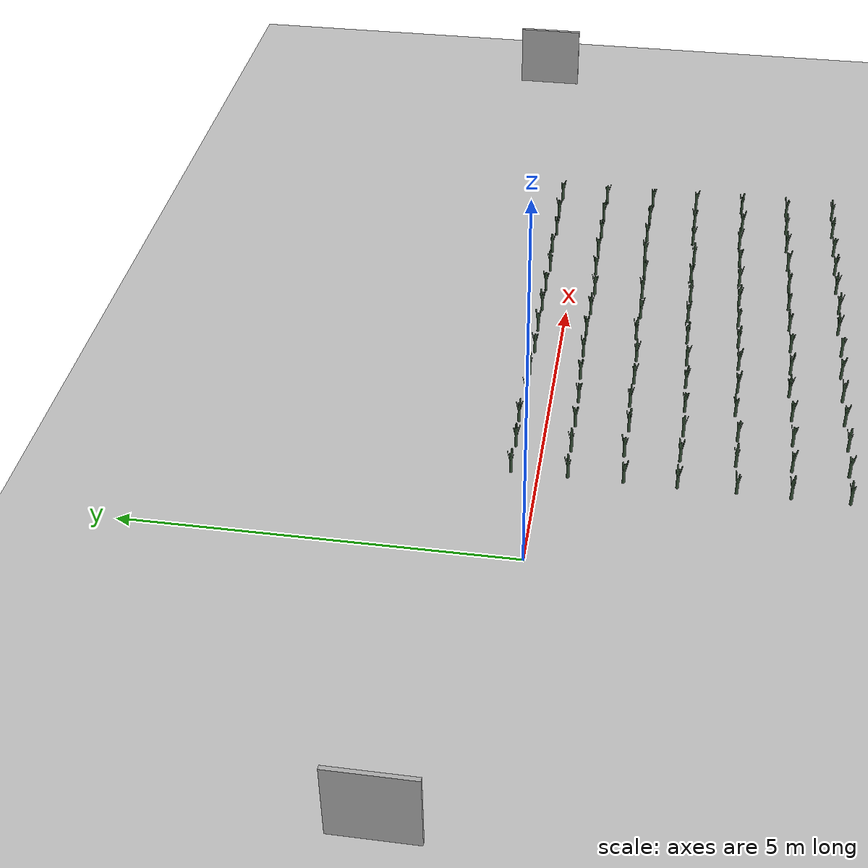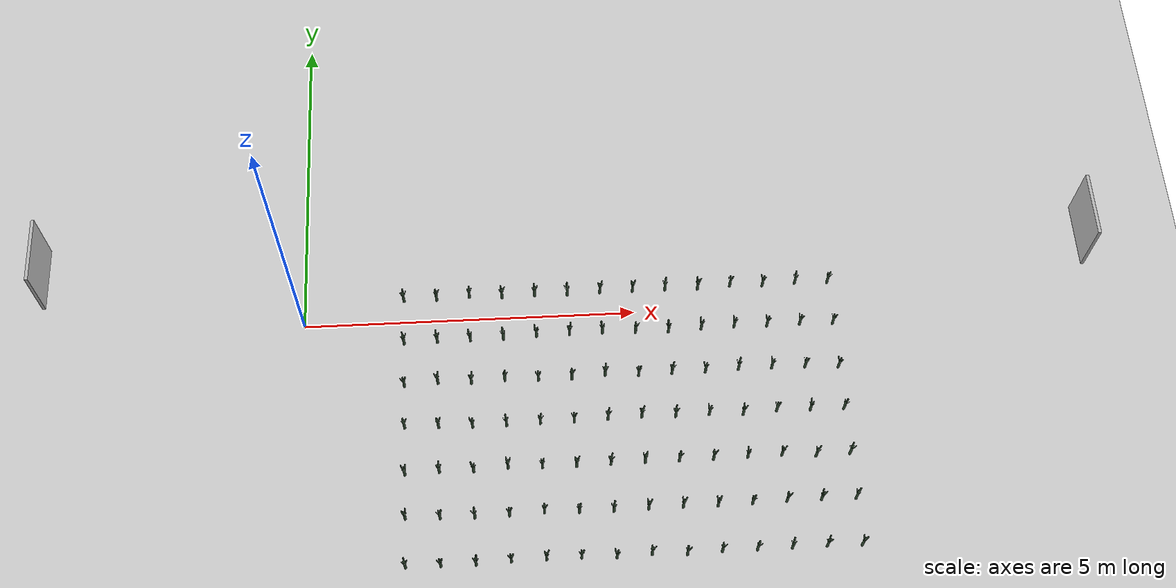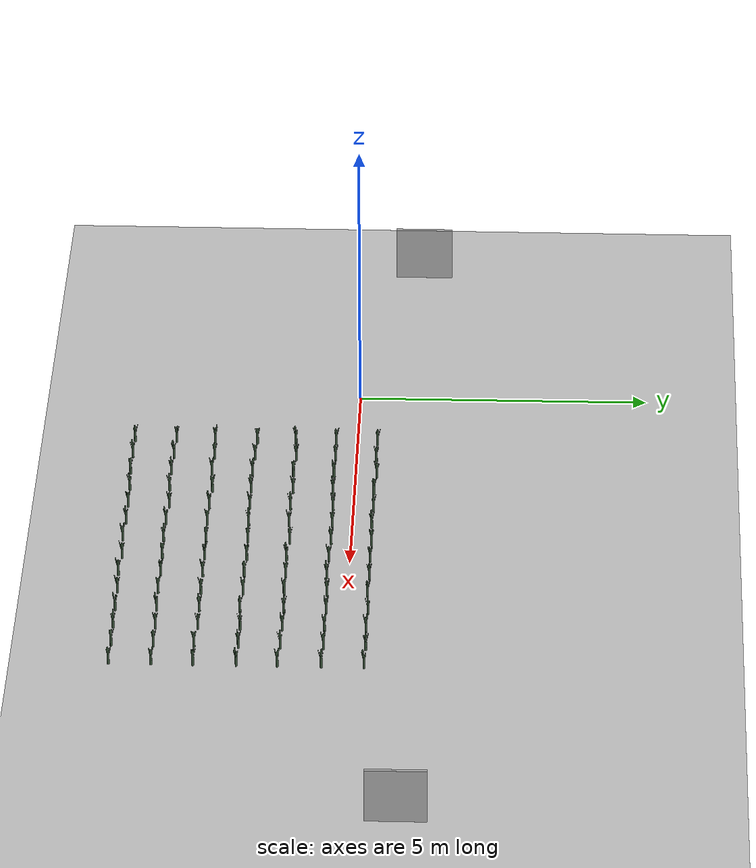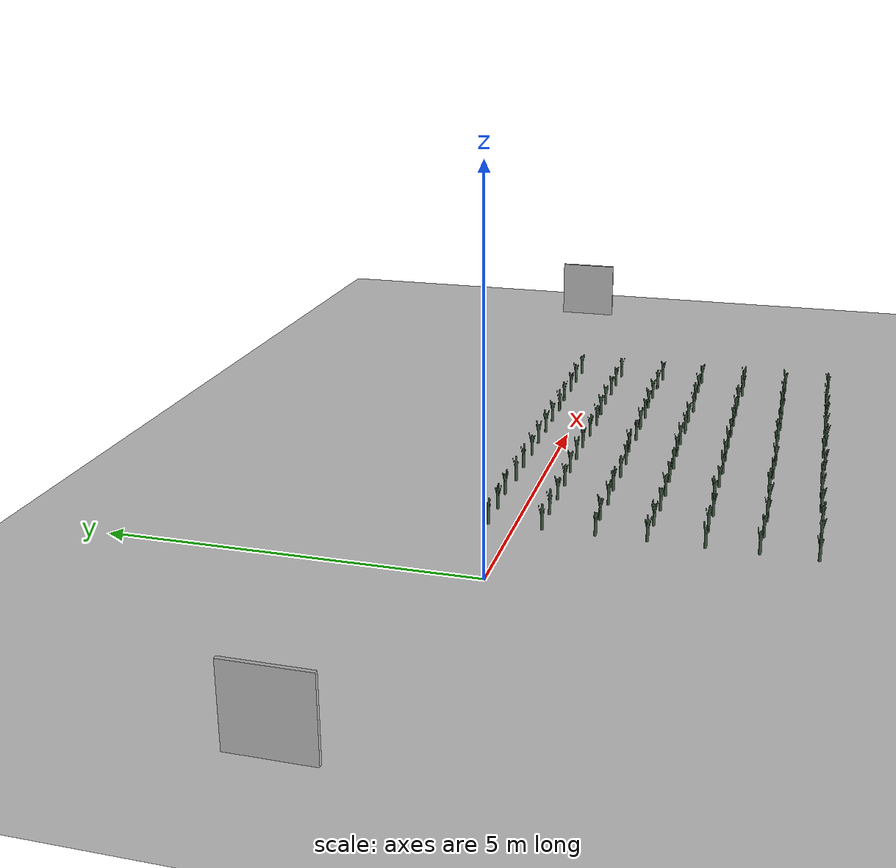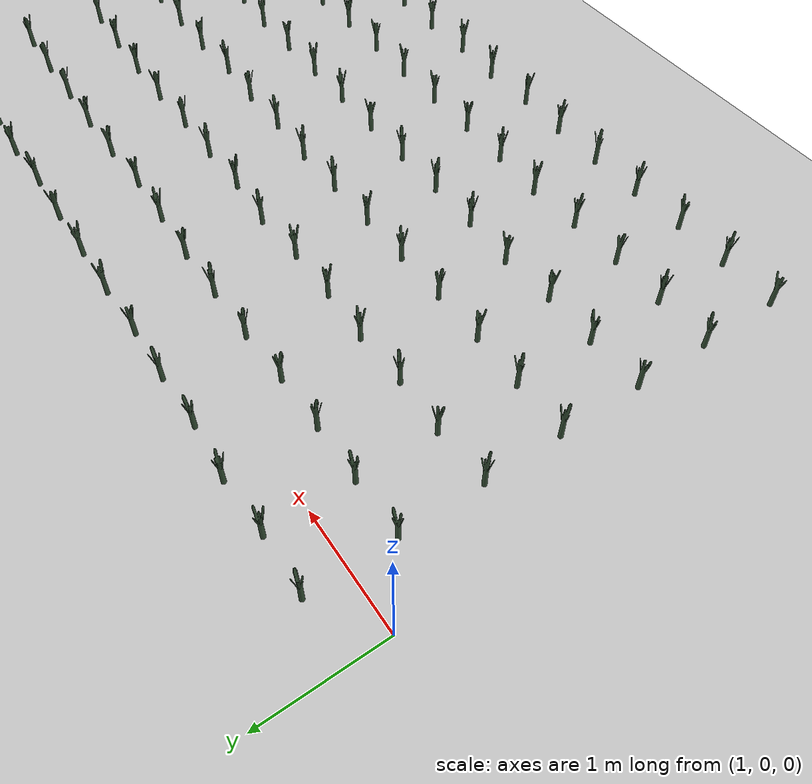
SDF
<sdf version="1.6">
 <world name="default">
  <light name="sun" type="directional">
   <pose>0 0 10 0 -0 0</pose>
   <diffuse>0.5 0.5 0.5 1</diffuse>
   <specular>0.1 0.1 0.1 1</specular>
   <attenuation>
    <range>1000</range>
    <constant>0.9</constant>
    <linear>0.01</linear>
    <quadratic>0.001</quadratic>
   </attenuation>
   <direction>0.9 0.5 -1</direction>
  </light>
  <scene><background>130 200 255 1</background><ambient>130 140 140 1</ambient></scene>
  <include><uri>model://Sign</uri><pose>12 1 0 0 0 0</pose><static>1</static></include>
  <include><uri>model://Sign</uri><pose>-4 1 0 0 0 0</pose><static>1</static></include>
  <include><uri>model://dirt_plane</uri></include>
  <include><uri>model://Leek</uri><pose>1.500000 0.347199 0.15 0 0 -25.205509</pose><static>0</static></include>
  <include><uri>model://Leek</uri><pose>2.000000 0.343553 0.15 0 0 -58.023160</pose><static>0</static></include>
  <include><uri>model://Leek</uri><pose>2.500000 0.368644 0.15 0 0 167.792155</pose><static>0</static></include>
  <include>
   <uri>model://Leek</uri>
   <pose>3.000000 0.334669 0.15 0 0 -137.977157</pose>
   <static>0</static>
  </include>
  <include><uri>model://Leek</uri><pose>3.500000 0.345116 0.15 0 0 -43.953948</pose><static>0</static></include>
  <include>
   <uri>model://Leek</uri>
   <pose>4.000000 0.335526 0.15 0 0 -130.264223</pose>
   <static>0</static>
  </include>
  <include><uri>model://Leek</uri><pose>4.500000 0.349215 0.15 0 0 -7.061172</pose><static>0</static></include>
  <include><uri>model://Leek</uri><pose>5.000000 0.345693 0.15 0 0 -38.766913</pose><static>0</static></include>
  <include><uri>model://Leek</uri><pose>5.500000 0.348066 0.15 0 0 -17.410048</pose><static>0</static></include>
  <include>
   <uri>model://Leek</uri>
   <pose>6.000000 0.337460 0.15 0 0 -112.861694</pose>
   <static>0</static>
  </include>
  <include><uri>model://Leek</uri><pose>6.500000 0.365721 0.15 0 0 141.488709</pose><static>0</static></include>
  <include><uri>model://Leek</uri><pose>7.000000 0.347504 0.15 0 0 -22.463216</pose><static>0</static></include>
  <include><uri>model://Leek</uri><pose>7.500000 0.362042 0.15 0 0 108.379906</pose><static>0</static></include>
  <include><uri>model://Leek</uri><pose>8.000000 0.354607 0.15 0 0 41.465158</pose><static>0</static></include>
  <include>
   <uri>model://Leek</uri>
   <pose>1.500000 -0.369525 0.15 0 0 -175.724592</pose>
   <static>0</static>
  </include>
  <include>
   <uri>model://Leek</uri>
   <pose>2.000000 -0.363948 0.15 0 0 -125.534963</pose>
   <static>0</static>
  </include>
  <include>
   <uri>model://Leek</uri>
   <pose>2.500000 -0.367910 0.15 0 0 -161.191735</pose>
   <static>0</static>
  </include>
  <include>
   <uri>model://Leek</uri>
   <pose>3.000000 -0.363754 0.15 0 0 -123.788120</pose>
   <static>0</static>
  </include>
  <include><uri>model://Leek</uri><pose>3.500000 -0.341367 0.15 0 0 77.695830</pose><static>0</static></include>
  <include>
   <uri>model://Leek</uri>
   <pose>4.000000 -0.336092 0.15 0 0 125.169761</pose>
   <static>0</static>
  </include>
  <include>
   <uri>model://Leek</uri>
   <pose>4.500000 -0.333710 0.15 0 0 146.611966</pose>
   <static>0</static>
  </include>
  <include><uri>model://Leek</uri><pose>5.000000 -0.350886 0.15 0 0 -7.971895</pose><static>0</static></include>
  <include>
   <uri>model://Leek</uri>
   <pose>5.500000 -0.365855 0.15 0 0 -142.694072</pose>
   <static>0</static>
  </include>
  <include>
   <uri>model://Leek</uri>
   <pose>6.000000 -0.338588 0.15 0 0 102.705771</pose>
   <static>0</static>
  </include>
  <include>
   <uri>model://Leek</uri>
   <pose>6.500000 -0.331592 0.15 0 0 165.674098</pose>
   <static>0</static>
  </include>
  <include>
   <uri>model://Leek</uri>
   <pose>7.000000 -0.337840 0.15 0 0 109.443593</pose>
   <static>0</static>
  </include>
  <include>
   <uri>model://Leek</uri>
   <pose>7.500000 -0.335042 0.15 0 0 134.625890</pose>
   <static>0</static>
  </include>
  <include><uri>model://Leek</uri><pose>8.000000 -0.348966 0.15 0 0 9.302887</pose><static>0</static></include>
  <include>
   <uri>model://Leek</uri>
   <pose>1.500000 -1.067755 0.15 0 0 -159.795682</pose>
   <static>0</static>
  </include>
  <include><uri>model://Leek</uri><pose>2.000000 -1.040790 0.15 0 0 82.888602</pose><static>0</static></include>
  <include>
   <uri>model://Leek</uri>
   <pose>2.500000 -1.065399 0.15 0 0 -138.591456</pose>
   <static>0</static>
  </include>
  <include><uri>model://Leek</uri><pose>3.000000 -1.045315 0.15 0 0 42.167323</pose><static>0</static></include>
  <include>
   <uri>model://Leek</uri>
   <pose>3.500000 -1.067092 0.15 0 0 -153.828431</pose>
   <static>0</static>
  </include>
  <include>
   <uri>model://Leek</uri>
   <pose>4.000000 -1.067628 0.15 0 0 -158.649551</pose>
   <static>0</static>
  </include>
  <include>
   <uri>model://Leek</uri>
   <pose>4.500000 -1.032575 0.15 0 0 156.826075</pose>
   <static>0</static>
  </include>
  <include>
   <uri>model://Leek</uri>
   <pose>5.000000 -1.061472 0.15 0 0 -103.249277</pose>
   <static>0</static>
  </include>
  <include>
   <uri>model://Leek</uri>
   <pose>5.500000 -1.052152 0.15 0 0 -19.368933</pose>
   <static>0</static>
  </include>
  <include>
   <uri>model://Leek</uri>
   <pose>6.000000 -1.054592 0.15 0 0 -41.326347</pose>
   <static>0</static>
  </include>
  <include>
   <uri>model://Leek</uri>
   <pose>6.500000 -1.034496 0.15 0 0 139.538620</pose>
   <static>0</static>
  </include>
  <include>
   <uri>model://Leek</uri>
   <pose>7.000000 -1.035781 0.15 0 0 127.969656</pose>
   <static>0</static>
  </include>
  <include><uri>model://Leek</uri><pose>7.500000 -1.045451 0.15 0 0 40.939426</pose><static>0</static></include>
  <include>
   <uri>model://Leek</uri>
   <pose>8.000000 -1.069960 0.15 0 0 -179.636495</pose>
   <static>0</static>
  </include>
  <include>
   <uri>model://Leek</uri>
   <pose>1.500000 -1.735487 0.15 0 0 130.615488</pose>
   <static>0</static>
  </include>
  <include><uri>model://Leek</uri><pose>2.000000 -1.749418 0.15 0 0 5.234147</pose><static>0</static></include>
  <include>
   <uri>model://Leek</uri>
   <pose>2.500000 -1.767839 0.15 0 0 -160.554828</pose>
   <static>0</static>
  </include>
  <include>
   <uri>model://Leek</uri>
   <pose>3.000000 -1.767950 0.15 0 0 -161.547846</pose>
   <static>0</static>
  </include>
  <include>
   <uri>model://Leek</uri>
   <pose>3.500000 -1.760700 0.15 0 0 -96.299849</pose>
   <static>0</static>
  </include>
  <include>
   <uri>model://Leek</uri>
   <pose>4.000000 -1.754530 0.15 0 0 -40.772867</pose>
   <static>0</static>
  </include>
  <include><uri>model://Leek</uri><pose>4.500000 -1.742360 0.15 0 0 68.763818</pose><static>0</static></include>
  <include>
   <uri>model://Leek</uri>
   <pose>5.000000 -1.731932 0.15 0 0 162.612583</pose>
   <static>0</static>
  </include>
  <include><uri>model://Leek</uri><pose>5.500000 -1.747927 0.15 0 0 18.658031</pose><static>0</static></include>
  <include><uri>model://Leek</uri><pose>6.000000 -1.739260 0.15 0 0 96.656932</pose><static>0</static></include>
  <include>
   <uri>model://Leek</uri>
   <pose>6.500000 -1.764664 0.15 0 0 -131.972020</pose>
   <static>0</static>
  </include>
  <include>
   <uri>model://Leek</uri>
   <pose>7.000000 -1.732192 0.15 0 0 160.271364</pose>
   <static>0</static>
  </include>
  <include>
   <uri>model://Leek</uri>
   <pose>7.500000 -1.737222 0.15 0 0 115.005273</pose>
   <static>0</static>
  </include>
  <include><uri>model://Leek</uri><pose>8.000000 -1.742606 0.15 0 0 66.549615</pose><static>0</static></include>
  <include>
   <uri>model://Leek</uri>
   <pose>1.500000 -2.466655 0.15 0 0 -149.899338</pose>
   <static>0</static>
  </include>
  <include>
   <uri>model://Leek</uri>
   <pose>2.000000 -2.451406 0.15 0 0 -12.655324</pose>
   <static>0</static>
  </include>
  <include>
   <uri>model://Leek</uri>
   <pose>2.500000 -2.465772 0.15 0 0 -141.948406</pose>
   <static>0</static>
  </include>
  <include>
   <uri>model://Leek</uri>
   <pose>3.000000 -2.430396 0.15 0 0 176.434208</pose>
   <static>0</static>
  </include>
  <include>
   <uri>model://Leek</uri>
   <pose>3.500000 -2.451666 0.15 0 0 -14.997464</pose>
   <static>0</static>
  </include>
  <include>
   <uri>model://Leek</uri>
   <pose>4.000000 -2.456394 0.15 0 0 -57.547932</pose>
   <static>0</static>
  </include>
  <include><uri>model://Leek</uri><pose>4.500000 -2.448651 0.15 0 0 12.142674</pose><static>0</static></include>
  <include><uri>model://Leek</uri><pose>5.000000 -2.442913 0.15 0 0 63.781087</pose><static>0</static></include>
  <include><uri>model://Leek</uri><pose>5.500000 -2.443934 0.15 0 0 54.592076</pose><static>0</static></include>
  <include><uri>model://Leek</uri><pose>6.000000 -2.443182 0.15 0 0 61.357881</pose><static>0</static></include>
  <include><uri>model://Leek</uri><pose>6.500000 -2.439316 0.15 0 0 96.155694</pose><static>0</static></include>
  <include>
   <uri>model://Leek</uri>
   <pose>7.000000 -2.432700 0.15 0 0 155.695673</pose>
   <static>0</static>
  </include>
  <include>
   <uri>model://Leek</uri>
   <pose>7.500000 -2.466870 0.15 0 0 -151.827727</pose>
   <static>0</static>
  </include>
  <include>
   <uri>model://Leek</uri>
   <pose>8.000000 -2.453537 0.15 0 0 -31.831680</pose>
   <static>0</static>
  </include>
  <include>
   <uri>model://Leek</uri>
   <pose>1.500000 -3.136793 0.15 0 0 118.859464</pose>
   <static>0</static>
  </include>
  <include>
   <uri>model://Leek</uri>
   <pose>2.000000 -3.152385 0.15 0 0 -21.464087</pose>
   <static>0</static>
  </include>
  <include>
   <uri>model://Leek</uri>
   <pose>2.500000 -3.167268 0.15 0 0 -155.409294</pose>
   <static>0</static>
  </include>
  <include>
   <uri>model://Leek</uri>
   <pose>3.000000 -3.160792 0.15 0 0 -97.130872</pose>
   <static>0</static>
  </include>
  <include>
   <uri>model://Leek</uri>
   <pose>3.500000 -3.134827 0.15 0 0 136.557259</pose>
   <static>0</static>
  </include>
  <include>
   <uri>model://Leek</uri>
   <pose>4.000000 -3.157946 0.15 0 0 -71.513711</pose>
   <static>0</static>
  </include>
  <include>
   <uri>model://Leek</uri>
   <pose>4.500000 -3.166601 0.15 0 0 -149.410725</pose>
   <static>0</static>
  </include>
  <include>
   <uri>model://Leek</uri>
   <pose>5.000000 -3.155528 0.15 0 0 -49.748009</pose>
   <static>0</static>
  </include>
  <include><uri>model://Leek</uri><pose>5.500000 -3.150650 0.15 0 0 -5.849811</pose><static>0</static></include>
  <include>
   <uri>model://Leek</uri>
   <pose>6.000000 -3.159004 0.15 0 0 -81.036018</pose>
   <static>0</static>
  </include>
  <include>
   <uri>model://Leek</uri>
   <pose>6.500000 -3.151681 0.15 0 0 -15.125265</pose>
   <static>0</static>
  </include>
  <include>
   <uri>model://Leek</uri>
   <pose>7.000000 -3.137605 0.15 0 0 111.559027</pose>
   <static>0</static>
  </include>
  <include>
   <uri>model://Leek</uri>
   <pose>7.500000 -3.136742 0.15 0 0 119.319480</pose>
   <static>0</static>
  </include>
  <include><uri>model://Leek</uri><pose>8.000000 -3.142229 0.15 0 0 69.938487</pose><static>0</static></include>
  <include>
   <uri>model://Leek</uri>
   <pose>1.500000 -3.859062 0.15 0 0 -81.562325</pose>
   <static>0</static>
  </include>
  <include>
   <uri>model://Leek</uri>
   <pose>2.000000 -3.862180 0.15 0 0 -109.623220</pose>
   <static>0</static>
  </include>
  <include>
   <uri>model://Leek</uri>
   <pose>2.500000 -3.868188 0.15 0 0 -163.695168</pose>
   <static>0</static>
  </include>
  <include><uri>model://Leek</uri><pose>3.000000 -3.844730 0.15 0 0 47.433143</pose><static>0</static></include>
  <include>
   <uri>model://Leek</uri>
   <pose>3.500000 -3.837537 0.15 0 0 112.165152</pose>
   <static>0</static>
  </include>
  <include>
   <uri>model://Leek</uri>
   <pose>4.000000 -3.835645 0.15 0 0 129.191173</pose>
   <static>0</static>
  </include>
  <include>
   <uri>model://Leek</uri>
   <pose>4.500000 -3.858797 0.15 0 0 -79.175631</pose>
   <static>0</static>
  </include>
  <include>
   <uri>model://Leek</uri>
   <pose>5.000000 -3.832715 0.15 0 0 155.568365</pose>
   <static>0</static>
  </include>
  <include>
   <uri>model://Leek</uri>
   <pose>5.500000 -3.859966 0.15 0 0 -89.694985</pose>
   <static>0</static>
  </include>
  <include>
   <uri>model://Leek</uri>
   <pose>6.000000 -3.838322 0.15 0 0 105.098642</pose>
   <static>0</static>
  </include>
  <include><uri>model://Leek</uri><pose>6.500000 -3.839067 0.15 0 0 98.398621</pose><static>0</static></include>
  <include>
   <uri>model://Leek</uri>
   <pose>7.000000 -3.836576 0.15 0 0 120.819298</pose>
   <static>0</static>
  </include>
  <include>
   <uri>model://Leek</uri>
   <pose>7.500000 -3.832588 0.15 0 0 156.712246</pose>
   <static>0</static>
  </include>
  <include><uri>model://Leek</uri><pose>8.000000 -3.842292 0.15 0 0 69.370562</pose><static>0</static></include>
 </world>
</sdf>

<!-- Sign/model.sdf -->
<sdf version='1.6'>
  <model name='Sign'>
    <link name='link'>
      <pose frame=''>0 0 0 0 -0 0</pose>
      <inertial>
        <mass>1</mass>
        <inertia>
          <ixx>0.166667</ixx>
          <ixy>0</ixy>
          <ixz>0</ixz>
          <iyy>0.166667</iyy>
          <iyz>0</iyz>
          <izz>0.166667</izz>
        </inertia>
        <pose frame=''>0 0 0 0 -0 0</pose>
      </inertial>
      <self_collide>0</self_collide>
      <kinematic>0</kinematic>
      <gravity>1</gravity>
      <visual name='visual'>
        <geometry>
          <box>
            <size>1 0.05 1</size>
          </box>
        </geometry>
        <material>
          <script>
            <uri>model://ground_plane/materials/scripts/my_ground_plane.material</uri>
            <uri>model://ground_plane/materials/textures</uri>
            <name>my_ground_plane/NaioLogo</name>
          </script>
        </material>
        <pose frame=''>0 0 0.5 0 -0 1.57</pose>
        <cast_shadows>1</cast_shadows>
        <transparency>0</transparency>
      </visual>
    </link>
    <static>1</static>
    <allow_auto_disable>1</allow_auto_disable>
  </model>
</sdf>

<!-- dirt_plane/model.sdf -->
<sdf version="1.4">
<model name="dirt_plane">
  <static>true</static>
    <link name="link">
      <collision name="collision">
        <geometry>
          <plane>
            <normal>0 0 1</normal>
            <size>100 100</size>
          </plane>
        </geometry>
        <surface>
          <friction>
            <ode>
              <mu>100</mu>
              <mu2>50</mu2>
            </ode>
          </friction>
        </surface>
      </collision>
      <visual name="visual">
        <cast_shadows>false</cast_shadows>
        <geometry>
          <plane>
            <normal>0 0 1</normal>
            <size>100 100</size>
          </plane>
        </geometry>
        <material>
          <script>
            <uri>model://ground_plane/materials/scripts/my_ground_plane.material</uri>
            <uri>model://ground_plane/materials/textures</uri>
            <name>my_ground_plane/Dirt</name>
          </script>
        </material>
      </visual>
    </link>
  </model>
</sdf>

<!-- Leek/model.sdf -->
<sdf version='1.6'>
  <model name='Leek'>
    <link name='link'>
      <pose frame=''>0 0 0 0 -0 0</pose>
      <inertial>
        <mass>1</mass>
        <inertia>
          <ixx>0.145833</ixx>
          <ixy>0</ixy>
          <ixz>0</ixz>
          <iyy>0.145833</iyy>
          <iyz>0</iyz>
          <izz>0.125</izz>
        </inertia>
        <pose frame=''>0 0 0 0 -0 0</pose>
      </inertial>
      <self_collide>0</self_collide>
      <kinematic>0</kinematic>
      <gravity>1</gravity>
      <visual name='visual'>
        <geometry>
          <mesh>
            <uri>model://Leek/Poireau.dae</uri>
            <scale>1 1 1</scale>
          </mesh>
        </geometry>
        <material>
          <script>
            <name>Gazebo/Grey</name>
            <uri>file://media/materials/scripts/gazebo.material</uri>
          </script>
          <ambient>0.3 0.7 0.4 0</ambient>
          <diffuse>0.2 0.3 0.2 0</diffuse>
          <specular>0 0 0 1</specular>
          <emissive>0 0 0 1</emissive>
          <shader type='vertex'>
            <normal_map>__default__</normal_map>
          </shader>
        </material>
        <pose frame=''>0 0 -0.08 0 -0 0</pose>
        <cast_shadows>1</cast_shadows>
        <transparency>0</transparency>
      </visual>
      <collision name='collision'>
        <laser_retro>0</laser_retro>
        <max_contacts>10</max_contacts>
        <pose frame=''>0 0 0 0 -0 0</pose>
        <geometry>
          <cylinder>
            <radius>0.02</radius>
            <length>0.25</length>
          </cylinder>
        </geometry>
        <surface>
          <friction>
            <ode>
              <mu>1</mu>
              <mu2>1</mu2>
              <fdir1>0 0 0</fdir1>
              <slip1>0</slip1>
              <slip2>0</slip2>
            </ode>
            <torsional>
              <coefficient>1</coefficient>
              <patch_radius>0</patch_radius>
              <surface_radius>0</surface_radius>
              <use_patch_radius>1</use_patch_radius>
              <ode>
                <slip>0</slip>
              </ode>
            </torsional>
          </friction>
          <bounce>
            <restitution_coefficient>0</restitution_coefficient>
            <threshold>1e+06</threshold>
          </bounce>
          <contact>
            <collide_without_contact>0</collide_without_contact>
            <collide_without_contact_bitmask>1</collide_without_contact_bitmask>
            <collide_bitmask>1</collide_bitmask>
            <ode>
              <soft_cfm>0</soft_cfm>
              <soft_erp>0.2</soft_erp>
              <kp>1e+13</kp>
              <kd>1</kd>
              <max_vel>0.01</max_vel>
              <min_depth>0</min_depth>
            </ode>
            <bullet>
              <split_impulse>1</split_impulse>
              <split_impulse_penetration_threshold>-0.01</split_impulse_penetration_threshold>
              <soft_cfm>0</soft_cfm>
              <soft_erp>0.2</soft_erp>
              <kp>1e+13</kp>
              <kd>1</kd>
            </bullet>
          </contact>
        </surface>
      </collision>
    </link>
    <static>0</static>
    <allow_auto_disable>1</allow_auto_disable>
  </model>
</sdf>
